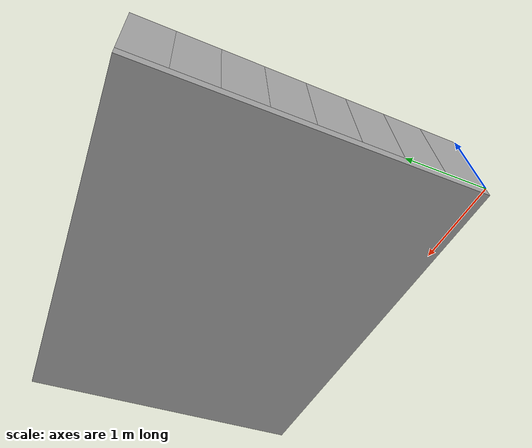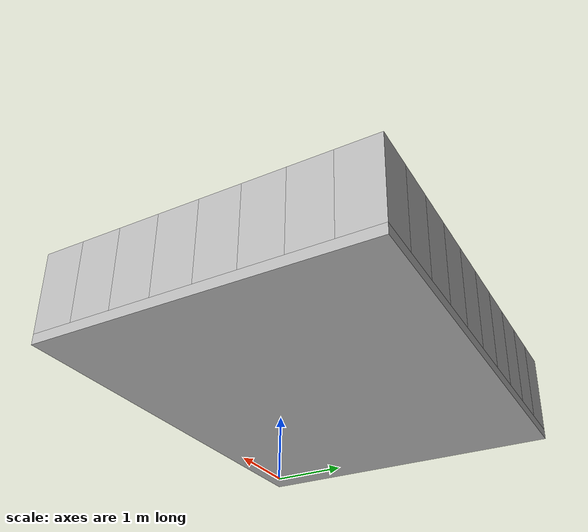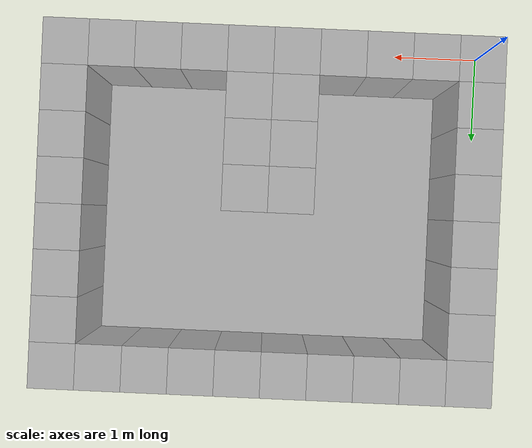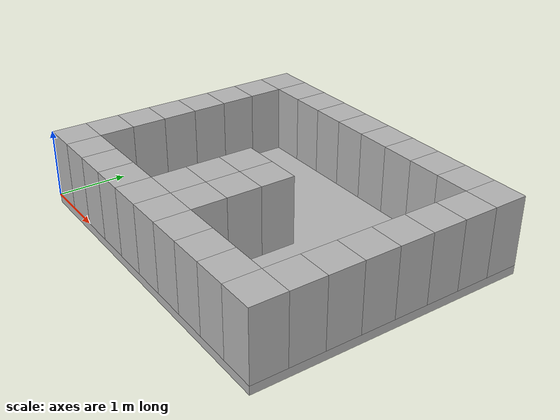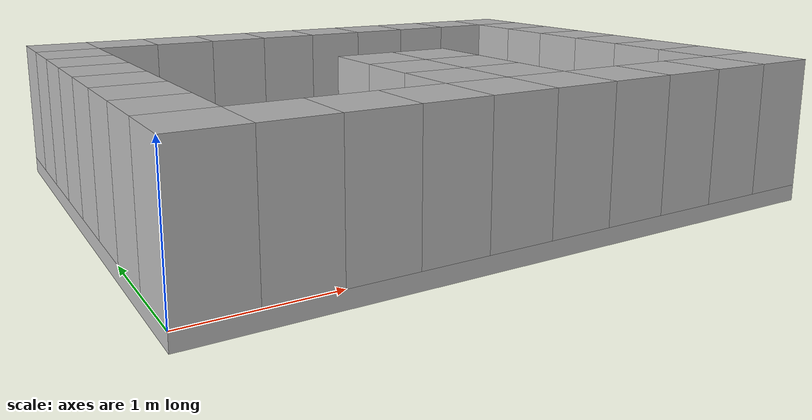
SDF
<sdf version="1.5">
  <model name="map">
    <static>1</static>
    <link name="map">
      <collision name="floor">
        <pose>2.5 2.0 -0.0625 0 0 0</pose>
        <geometry>
          <box>
            <size>5.0 4.0 0.125</size>
          </box>
        </geometry>
      </collision>
      <visual name="floor">
        <pose>2.5 2.0 -0.0625 0 0 0</pose>
        <geometry>
          <box>
            <size>5.0 4.0 0.125</size>
          </box>
        </geometry>
      </visual>
      <collision name="box_0_0">
        <pose>0.25 0.25 0.5 0 0 0</pose>
        <geometry>
          <box>
            <size>0.5 0.5 1.0</size>
          </box>
        </geometry>
      </collision>
      <visual name="box_0_0">
        <pose>0.25 0.25 0.5 0 0 0</pose>
        <geometry>
          <box>
            <size>0.5 0.5 1.0</size>
          </box>
        </geometry>
      </visual>
      <collision name="box_0_1">
        <pose>0.25 0.75 0.5 0 0 0</pose>
        <geometry>
          <box>
            <size>0.5 0.5 1.0</size>
          </box>
        </geometry>
      </collision>
      <visual name="box_0_1">
        <pose>0.25 0.75 0.5 0 0 0</pose>
        <geometry>
          <box>
            <size>0.5 0.5 1.0</size>
          </box>
        </geometry>
      </visual>
      <collision name="box_0_2">
        <pose>0.25 1.25 0.5 0 0 0</pose>
        <geometry>
          <box>
            <size>0.5 0.5 1.0</size>
          </box>
        </geometry>
      </collision>
      <visual name="box_0_2">
        <pose>0.25 1.25 0.5 0 0 0</pose>
        <geometry>
          <box>
            <size>0.5 0.5 1.0</size>
          </box>
        </geometry>
      </visual>
      <collision name="box_0_3">
        <pose>0.25 1.75 0.5 0 0 0</pose>
        <geometry>
          <box>
            <size>0.5 0.5 1.0</size>
          </box>
        </geometry>
      </collision>
      <visual name="box_0_3">
        <pose>0.25 1.75 0.5 0 0 0</pose>
        <geometry>
          <box>
            <size>0.5 0.5 1.0</size>
          </box>
        </geometry>
      </visual>
      <collision name="box_0_4">
        <pose>0.25 2.25 0.5 0 0 0</pose>
        <geometry>
          <box>
            <size>0.5 0.5 1.0</size>
          </box>
        </geometry>
      </collision>
      <visual name="box_0_4">
        <pose>0.25 2.25 0.5 0 0 0</pose>
        <geometry>
          <box>
            <size>0.5 0.5 1.0</size>
          </box>
        </geometry>
      </visual>
      <collision name="box_0_5">
        <pose>0.25 2.75 0.5 0 0 0</pose>
        <geometry>
          <box>
            <size>0.5 0.5 1.0</size>
          </box>
        </geometry>
      </collision>
      <visual name="box_0_5">
        <pose>0.25 2.75 0.5 0 0 0</pose>
        <geometry>
          <box>
            <size>0.5 0.5 1.0</size>
          </box>
        </geometry>
      </visual>
      <collision name="box_0_6">
        <pose>0.25 3.25 0.5 0 0 0</pose>
        <geometry>
          <box>
            <size>0.5 0.5 1.0</size>
          </box>
        </geometry>
      </collision>
      <visual name="box_0_6">
        <pose>0.25 3.25 0.5 0 0 0</pose>
        <geometry>
          <box>
            <size>0.5 0.5 1.0</size>
          </box>
        </geometry>
      </visual>
      <collision name="box_0_7">
        <pose>0.25 3.75 0.5 0 0 0</pose>
        <geometry>
          <box>
            <size>0.5 0.5 1.0</size>
          </box>
        </geometry>
      </collision>
      <visual name="box_0_7">
        <pose>0.25 3.75 0.5 0 0 0</pose>
        <geometry>
          <box>
            <size>0.5 0.5 1.0</size>
          </box>
        </geometry>
      </visual>
      <collision name="box_1_0">
        <pose>0.75 0.25 0.5 0 0 0</pose>
        <geometry>
          <box>
            <size>0.5 0.5 1.0</size>
          </box>
        </geometry>
      </collision>
      <visual name="box_1_0">
        <pose>0.75 0.25 0.5 0 0 0</pose>
        <geometry>
          <box>
            <size>0.5 0.5 1.0</size>
          </box>
        </geometry>
      </visual>
      <collision name="box_1_7">
        <pose>0.75 3.75 0.5 0 0 0</pose>
        <geometry>
          <box>
            <size>0.5 0.5 1.0</size>
          </box>
        </geometry>
      </collision>
      <visual name="box_1_7">
        <pose>0.75 3.75 0.5 0 0 0</pose>
        <geometry>
          <box>
            <size>0.5 0.5 1.0</size>
          </box>
        </geometry>
      </visual>
      <collision name="box_2_0">
        <pose>1.25 0.25 0.5 0 0 0</pose>
        <geometry>
          <box>
            <size>0.5 0.5 1.0</size>
          </box>
        </geometry>
      </collision>
      <visual name="box_2_0">
        <pose>1.25 0.25 0.5 0 0 0</pose>
        <geometry>
          <box>
            <size>0.5 0.5 1.0</size>
          </box>
        </geometry>
      </visual>
      <collision name="box_2_7">
        <pose>1.25 3.75 0.5 0 0 0</pose>
        <geometry>
          <box>
            <size>0.5 0.5 1.0</size>
          </box>
        </geometry>
      </collision>
      <visual name="box_2_7">
        <pose>1.25 3.75 0.5 0 0 0</pose>
        <geometry>
          <box>
            <size>0.5 0.5 1.0</size>
          </box>
        </geometry>
      </visual>
      <collision name="box_3_0">
        <pose>1.75 0.25 0.5 0 0 0</pose>
        <geometry>
          <box>
            <size>0.5 0.5 1.0</size>
          </box>
        </geometry>
      </collision>
      <visual name="box_3_0">
        <pose>1.75 0.25 0.5 0 0 0</pose>
        <geometry>
          <box>
            <size>0.5 0.5 1.0</size>
          </box>
        </geometry>
      </visual>
      <collision name="box_3_7">
        <pose>1.75 3.75 0.5 0 0 0</pose>
        <geometry>
          <box>
            <size>0.5 0.5 1.0</size>
          </box>
        </geometry>
      </collision>
      <visual name="box_3_7">
        <pose>1.75 3.75 0.5 0 0 0</pose>
        <geometry>
          <box>
            <size>0.5 0.5 1.0</size>
          </box>
        </geometry>
      </visual>
      <collision name="box_4_0">
        <pose>2.25 0.25 0.5 0 0 0</pose>
        <geometry>
          <box>
            <size>0.5 0.5 1.0</size>
          </box>
        </geometry>
      </collision>
      <visual name="box_4_0">
        <pose>2.25 0.25 0.5 0 0 0</pose>
        <geometry>
          <box>
            <size>0.5 0.5 1.0</size>
          </box>
        </geometry>
      </visual>
      <collision name="box_4_1">
        <pose>2.25 0.75 0.5 0 0 0</pose>
        <geometry>
          <box>
            <size>0.5 0.5 1.0</size>
          </box>
        </geometry>
      </collision>
      <visual name="box_4_1">
        <pose>2.25 0.75 0.5 0 0 0</pose>
        <geometry>
          <box>
            <size>0.5 0.5 1.0</size>
          </box>
        </geometry>
      </visual>
      <collision name="box_4_2">
        <pose>2.25 1.25 0.5 0 0 0</pose>
        <geometry>
          <box>
            <size>0.5 0.5 1.0</size>
          </box>
        </geometry>
      </collision>
      <visual name="box_4_2">
        <pose>2.25 1.25 0.5 0 0 0</pose>
        <geometry>
          <box>
            <size>0.5 0.5 1.0</size>
          </box>
        </geometry>
      </visual>
      <collision name="box_4_3">
        <pose>2.25 1.75 0.5 0 0 0</pose>
        <geometry>
          <box>
            <size>0.5 0.5 1.0</size>
          </box>
        </geometry>
      </collision>
      <visual name="box_4_3">
        <pose>2.25 1.75 0.5 0 0 0</pose>
        <geometry>
          <box>
            <size>0.5 0.5 1.0</size>
          </box>
        </geometry>
      </visual>
      <collision name="box_4_7">
        <pose>2.25 3.75 0.5 0 0 0</pose>
        <geometry>
          <box>
            <size>0.5 0.5 1.0</size>
          </box>
        </geometry>
      </collision>
      <visual name="box_4_7">
        <pose>2.25 3.75 0.5 0 0 0</pose>
        <geometry>
          <box>
            <size>0.5 0.5 1.0</size>
          </box>
        </geometry>
      </visual>
      <collision name="box_5_0">
        <pose>2.75 0.25 0.5 0 0 0</pose>
        <geometry>
          <box>
            <size>0.5 0.5 1.0</size>
          </box>
        </geometry>
      </collision>
      <visual name="box_5_0">
        <pose>2.75 0.25 0.5 0 0 0</pose>
        <geometry>
          <box>
            <size>0.5 0.5 1.0</size>
          </box>
        </geometry>
      </visual>
      <collision name="box_5_1">
        <pose>2.75 0.75 0.5 0 0 0</pose>
        <geometry>
          <box>
            <size>0.5 0.5 1.0</size>
          </box>
        </geometry>
      </collision>
      <visual name="box_5_1">
        <pose>2.75 0.75 0.5 0 0 0</pose>
        <geometry>
          <box>
            <size>0.5 0.5 1.0</size>
          </box>
        </geometry>
      </visual>
      <collision name="box_5_2">
        <pose>2.75 1.25 0.5 0 0 0</pose>
        <geometry>
          <box>
            <size>0.5 0.5 1.0</size>
          </box>
        </geometry>
      </collision>
      <visual name="box_5_2">
        <pose>2.75 1.25 0.5 0 0 0</pose>
        <geometry>
          <box>
            <size>0.5 0.5 1.0</size>
          </box>
        </geometry>
      </visual>
      <collision name="box_5_3">
        <pose>2.75 1.75 0.5 0 0 0</pose>
        <geometry>
          <box>
            <size>0.5 0.5 1.0</size>
          </box>
        </geometry>
      </collision>
      <visual name="box_5_3">
        <pose>2.75 1.75 0.5 0 0 0</pose>
        <geometry>
          <box>
            <size>0.5 0.5 1.0</size>
          </box>
        </geometry>
      </visual>
      <collision name="box_5_7">
        <pose>2.75 3.75 0.5 0 0 0</pose>
        <geometry>
          <box>
            <size>0.5 0.5 1.0</size>
          </box>
        </geometry>
      </collision>
      <visual name="box_5_7">
        <pose>2.75 3.75 0.5 0 0 0</pose>
        <geometry>
          <box>
            <size>0.5 0.5 1.0</size>
          </box>
        </geometry>
      </visual>
      <collision name="box_6_0">
        <pose>3.25 0.25 0.5 0 0 0</pose>
        <geometry>
          <box>
            <size>0.5 0.5 1.0</size>
          </box>
        </geometry>
      </collision>
      <visual name="box_6_0">
        <pose>3.25 0.25 0.5 0 0 0</pose>
        <geometry>
          <box>
            <size>0.5 0.5 1.0</size>
          </box>
        </geometry>
      </visual>
      <collision name="box_6_7">
        <pose>3.25 3.75 0.5 0 0 0</pose>
        <geometry>
          <box>
            <size>0.5 0.5 1.0</size>
          </box>
        </geometry>
      </collision>
      <visual name="box_6_7">
        <pose>3.25 3.75 0.5 0 0 0</pose>
        <geometry>
          <box>
            <size>0.5 0.5 1.0</size>
          </box>
        </geometry>
      </visual>
      <collision name="box_7_0">
        <pose>3.75 0.25 0.5 0 0 0</pose>
        <geometry>
          <box>
            <size>0.5 0.5 1.0</size>
          </box>
        </geometry>
      </collision>
      <visual name="box_7_0">
        <pose>3.75 0.25 0.5 0 0 0</pose>
        <geometry>
          <box>
            <size>0.5 0.5 1.0</size>
          </box>
        </geometry>
      </visual>
      <collision name="box_7_7">
        <pose>3.75 3.75 0.5 0 0 0</pose>
        <geometry>
          <box>
            <size>0.5 0.5 1.0</size>
          </box>
        </geometry>
      </collision>
      <visual name="box_7_7">
        <pose>3.75 3.75 0.5 0 0 0</pose>
        <geometry>
          <box>
            <size>0.5 0.5 1.0</size>
          </box>
        </geometry>
      </visual>
      <collision name="box_8_0">
        <pose>4.25 0.25 0.5 0 0 0</pose>
        <geometry>
          <box>
            <size>0.5 0.5 1.0</size>
          </box>
        </geometry>
      </collision>
      <visual name="box_8_0">
        <pose>4.25 0.25 0.5 0 0 0</pose>
        <geometry>
          <box>
            <size>0.5 0.5 1.0</size>
          </box>
        </geometry>
      </visual>
      <collision name="box_8_7">
        <pose>4.25 3.75 0.5 0 0 0</pose>
        <geometry>
          <box>
            <size>0.5 0.5 1.0</size>
          </box>
        </geometry>
      </collision>
      <visual name="box_8_7">
        <pose>4.25 3.75 0.5 0 0 0</pose>
        <geometry>
          <box>
            <size>0.5 0.5 1.0</size>
          </box>
        </geometry>
      </visual>
      <collision name="box_9_0">
        <pose>4.75 0.25 0.5 0 0 0</pose>
        <geometry>
          <box>
            <size>0.5 0.5 1.0</size>
          </box>
        </geometry>
      </collision>
      <visual name="box_9_0">
        <pose>4.75 0.25 0.5 0 0 0</pose>
        <geometry>
          <box>
            <size>0.5 0.5 1.0</size>
          </box>
        </geometry>
      </visual>
      <collision name="box_9_1">
        <pose>4.75 0.75 0.5 0 0 0</pose>
        <geometry>
          <box>
            <size>0.5 0.5 1.0</size>
          </box>
        </geometry>
      </collision>
      <visual name="box_9_1">
        <pose>4.75 0.75 0.5 0 0 0</pose>
        <geometry>
          <box>
            <size>0.5 0.5 1.0</size>
          </box>
        </geometry>
      </visual>
      <collision name="box_9_2">
        <pose>4.75 1.25 0.5 0 0 0</pose>
        <geometry>
          <box>
            <size>0.5 0.5 1.0</size>
          </box>
        </geometry>
      </collision>
      <visual name="box_9_2">
        <pose>4.75 1.25 0.5 0 0 0</pose>
        <geometry>
          <box>
            <size>0.5 0.5 1.0</size>
          </box>
        </geometry>
      </visual>
      <collision name="box_9_3">
        <pose>4.75 1.75 0.5 0 0 0</pose>
        <geometry>
          <box>
            <size>0.5 0.5 1.0</size>
          </box>
        </geometry>
      </collision>
      <visual name="box_9_3">
        <pose>4.75 1.75 0.5 0 0 0</pose>
        <geometry>
          <box>
            <size>0.5 0.5 1.0</size>
          </box>
        </geometry>
      </visual>
      <collision name="box_9_4">
        <pose>4.75 2.25 0.5 0 0 0</pose>
        <geometry>
          <box>
            <size>0.5 0.5 1.0</size>
          </box>
        </geometry>
      </collision>
      <visual name="box_9_4">
        <pose>4.75 2.25 0.5 0 0 0</pose>
        <geometry>
          <box>
            <size>0.5 0.5 1.0</size>
          </box>
        </geometry>
      </visual>
      <collision name="box_9_5">
        <pose>4.75 2.75 0.5 0 0 0</pose>
        <geometry>
          <box>
            <size>0.5 0.5 1.0</size>
          </box>
        </geometry>
      </collision>
      <visual name="box_9_5">
        <pose>4.75 2.75 0.5 0 0 0</pose>
        <geometry>
          <box>
            <size>0.5 0.5 1.0</size>
          </box>
        </geometry>
      </visual>
      <collision name="box_9_6">
        <pose>4.75 3.25 0.5 0 0 0</pose>
        <geometry>
          <box>
            <size>0.5 0.5 1.0</size>
          </box>
        </geometry>
      </collision>
      <visual name="box_9_6">
        <pose>4.75 3.25 0.5 0 0 0</pose>
        <geometry>
          <box>
            <size>0.5 0.5 1.0</size>
          </box>
        </geometry>
      </visual>
      <collision name="box_9_7">
        <pose>4.75 3.75 0.5 0 0 0</pose>
        <geometry>
          <box>
            <size>0.5 0.5 1.0</size>
          </box>
        </geometry>
      </collision>
      <visual name="box_9_7">
        <pose>4.75 3.75 0.5 0 0 0</pose>
        <geometry>
          <box>
            <size>0.5 0.5 1.0</size>
          </box>
        </geometry>
      </visual>
    </link>
  </model>
</sdf>
